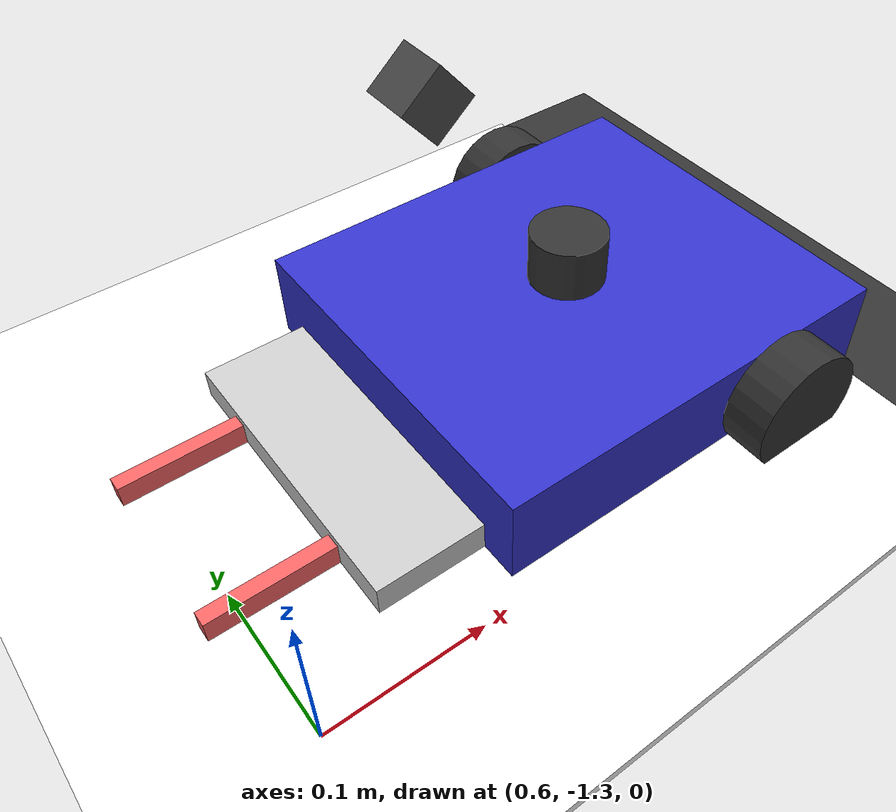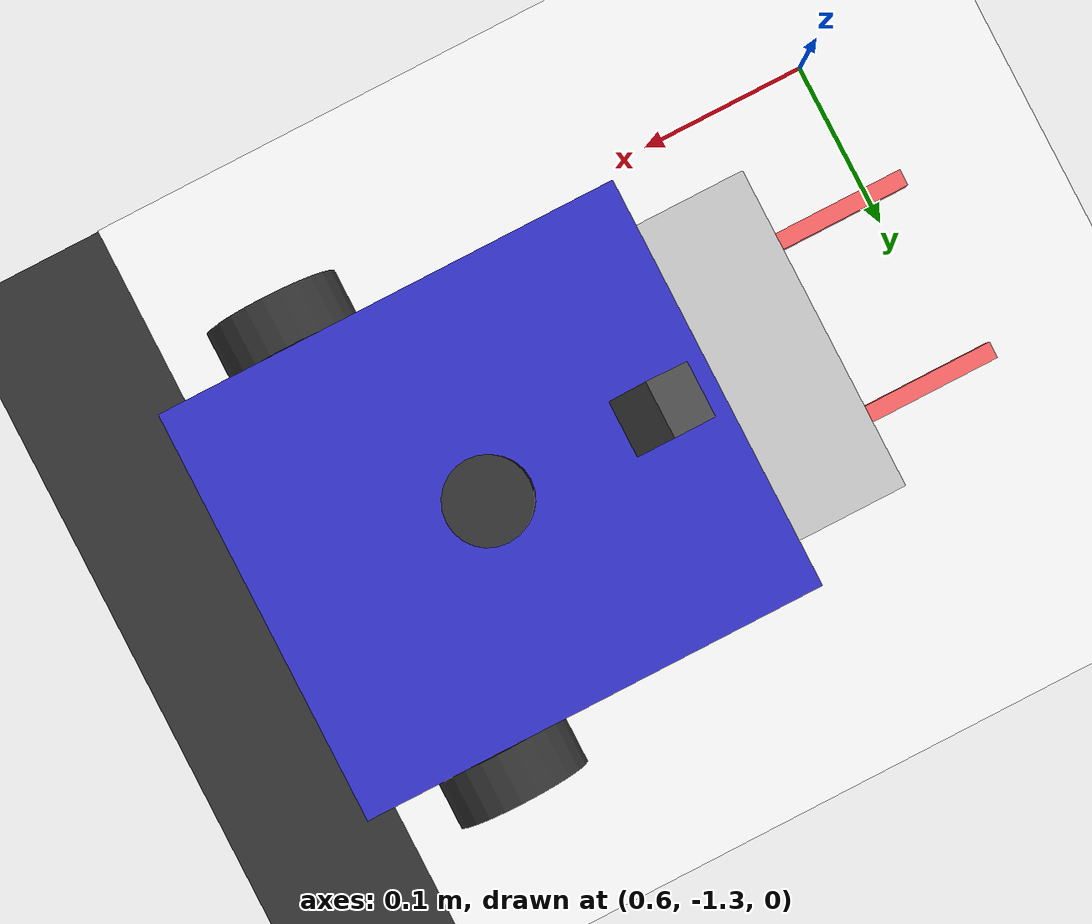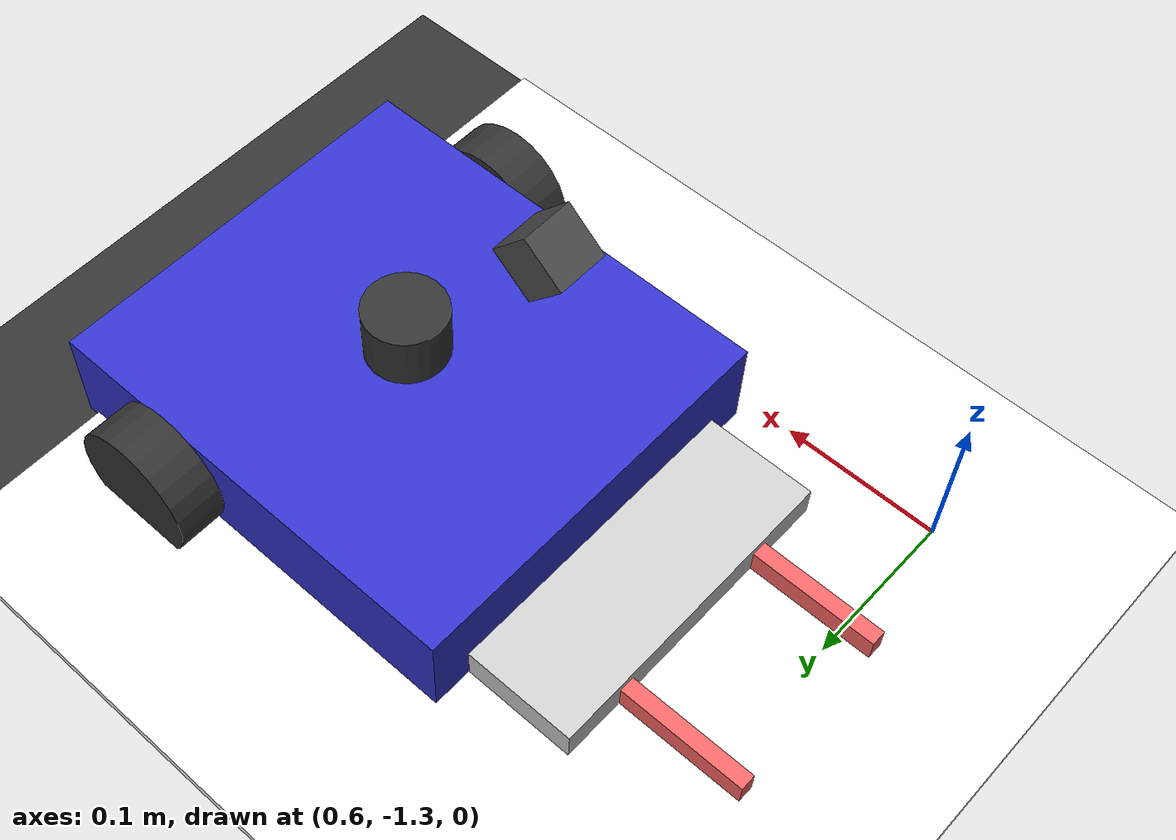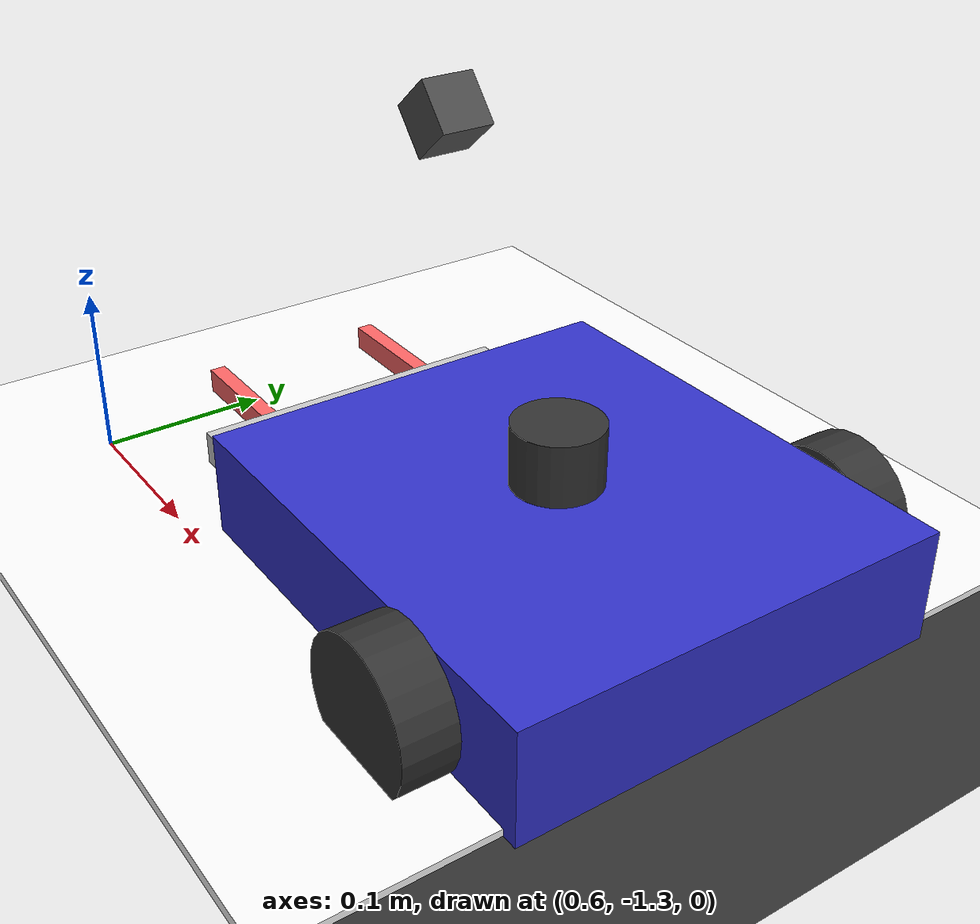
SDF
<sdf version="1.9">
 <world name="eurobot_2026_arena">
  <gravity>0 0 -9.81</gravity>
  <physics type="ode">
   <max_step_size>0.001</max_step_size>
   <real_time_factor>1</real_time_factor>
   <real_time_update_rate>1000</real_time_update_rate>
  </physics>
  <plugin name="ignition::gazebo::systems::Physics" filename="libignition-gazebo-physics-system.so"/>
  <plugin name="ignition::gazebo::systems::UserCommands" filename="libignition-gazebo-user-commands-system.so"/>
  <plugin name="ignition::gazebo::systems::SceneBroadcaster" filename="libignition-gazebo-scene-broadcaster-system.so"/>
  <plugin name="ignition::gazebo::systems::Sensors" filename="libignition-gazebo-sensors-system.so"/>
  <magnetic_field>6e-06 2.3e-05 -4.2e-05</magnetic_field>
  <atmosphere type="adiabatic"/>
  <scene><ambient>0.4 0.4 0.4 1</ambient><background>0.7 0.7 0.7 1</background><shadows>true</shadows></scene>
  <background><color>0.7 0.7 0.7 1</color></background>
  <model name="ground_plane">
   <static>true</static>
   <link name="link">
    <collision name="collision">
     <geometry><plane><normal>0 0 1</normal><size>1 1</size></plane></geometry>
    </collision>
    <visual name="visual">
     <geometry><plane><normal>0 0 1</normal><size>20 20</size></plane></geometry>
     <material>
      <ambient>0.8 0.8 0.8 1</ambient>
      <diffuse>0.2 0.2 0.2 1</diffuse>
      <specular>0.8 0.8 0.8 1</specular>
     </material>
    </visual>
    <inertial>
     <mass>1</mass>
     <inertia><ixx>1</ixx><ixy>0</ixy><ixz>0</ixz><iyy>1</iyy><iyz>0</iyz><izz>1</izz></inertia>
    </inertial>
   </link>
  </model>
  <include>
   <uri>file:///home/ibrahim/eurobot_ws/install/mam_eurobot_2026/share/mam_eurobot_2026/models/mat</uri>
   <name>floor_mat</name>
   <pose>0 -0.00433 0 0 -0 0</pose>
  </include>
  <include>
   <uri>file:///home/ibrahim/eurobot_ws/src/mam_eurobot_2026/models/simple_robot</uri>
   <name>simple_robot</name>
   <pose>0.868771 -1.16123 0.0035 -0 7e-06 3.1415</pose>
  </include>
  <light name="sun" type="directional">
   <cast_shadows>false</cast_shadows>
   <intensity>1</intensity>
   <direction>-0.5 0.5 -1</direction>
   <diffuse>1 1 1 1</diffuse>
   <specular>0.5 0.5 0.5 1</specular>
   <attenuation><range>10</range><linear>1</linear><constant>1</constant><quadratic>0</quadratic></attenuation>
   <spot><inner_angle>0</inner_angle><outer_angle>0</outer_angle><falloff>0</falloff></spot>
  </light>
 </world>
</sdf>

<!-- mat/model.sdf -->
<sdf version="1.9">
  <!-- Define a floor mat (3000mm x 2000mm x 70mm) -->
	<model name="floor_mat">
		<static>true</static>
		<link name="floor_link">
			<collision name="collision">
				<geometry>
					<box>
						<size>2 3 0.007</size>  <!-- 3000mm x 2000mm x 70mm -->
					</box>
				</geometry>
				<surface>
					<friction>
						<ode>
							<mu>0.9</mu>
							<mu2>0.9</mu2>
						</ode>
					</friction>
				</surface>
			</collision>
			<visual name="visual">
					<geometry>
							<box>
									<size>2 3 0.007</size> <!-- 3000mm x 2000mm x 70mm -->
							</box>
					</geometry>
					<material>
							<diffuse>1 1 1 1</diffuse>
							<pbr>
									<metal>
											<albedo_map>file://models/mat/mat_small.png</albedo_map>
											<metalness>0.0</metalness>
											<roughness>0.8</roughness>
									</metal>
							</pbr>
					</material>
			</visual>
		</link>
	</model>
</sdf>

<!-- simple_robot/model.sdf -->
<sdf version="1.9">
  <model name="simple_robot" canonical_link="base_link">
    <static>false</static>
    <pose>0 0 0 0 0 0</pose>

    <!-- ====================== BASE LINK ====================== -->
    <!-- Base dimensions: 280mm x 250mm x 70mm -->
    <!-- Base center is at wheel center height (25mm) -->
    <link name="base_link">
      <pose relative_to="__model__">0 0 0.025 0 0 0</pose>
      <inertial>
        <mass>3.0</mass>
        <inertia>
          <ixx>0.0186</ixx>
          <ixy>0</ixy>
          <ixz>0</ixz>
          <iyy>0.0228</iyy>
          <iyz>0</iyz>
          <izz>0.0391</izz>
        </inertia>
      </inertial>
      <visual name="base_visual">
        <geometry>
          <box><size>0.28 0.25 0.07</size></box>
        </geometry>
        <material>
          <ambient>0.2 0.2 0.8 1</ambient>
          <diffuse>0.2 0.2 0.8 1</diffuse>
          <specular>0.4 0.4 0.9 1</specular>
        </material>
      </visual>
      <collision name="base_collision">
        <geometry>
          <box><size>0.28 0.25 0.07</size></box>
        </geometry>
      </collision>
    </link>

    <!-- ====================== BASE FOOTPRINT ====================== -->
    <link name="base_footprint">
      <pose relative_to="base_link">0 0 -0.025 0 0 0</pose>
    </link>

    <joint name="base_to_footprint" type="fixed">
      <parent>base_link</parent>
      <child>base_footprint</child>
    </joint>

    <!-- ====================== LEFT WHEEL ====================== -->
    <!-- Wheel: 80mm diameter (40mm radius), 30mm width -->
    <!-- Position: 80mm from rear edge = -0.06m from base center -->
    <!-- Wheelbase: 220mm = 0.11m from center to each side -->
    <!-- Wheels OUTSIDE the base: 250mm/2 = 125mm + 15mm (half wheel width) = 140mm from center -->
    <link name="left_wheel">
      <pose relative_to="base_link">-0.06 0.14 0 -1.5707 0 0</pose>
      <inertial>
        <mass>0.3</mass>
        <inertia>
          <ixx>0.000240</ixx>
          <ixy>0</ixy>
          <ixz>0</ixz>
          <iyy>0.000240</iyy>
          <iyz>0</iyz>
          <izz>0.000480</izz>
        </inertia>
      </inertial>
      <visual name="wheel_visual">
        <geometry>
          <cylinder>
            <radius>0.04</radius>
            <length>0.03</length>
          </cylinder>
        </geometry>
        <material>
          <ambient>0.1 0.1 0.1 1</ambient>
          <diffuse>0.2 0.2 0.2 1</diffuse>
          <specular>0.3 0.3 0.3 1</specular>
        </material>
      </visual>
      <collision name="wheel_collision">
        <geometry>
          <cylinder>
            <radius>0.04</radius>
            <length>0.03</length>
          </cylinder>
        </geometry>
        <surface>
          <friction>
            <ode>
              <mu>1.0</mu>
              <mu2>1.0</mu2>
              <slip1>0.0</slip1>
              <slip2>0.0</slip2>
            </ode>
          </friction>
          <contact>
            <ode>
              <kp>1e6</kp>
              <kd>100</kd>
            </ode>
          </contact>
        </surface>
      </collision>
    </link>

    <!-- ====================== RIGHT WHEEL ====================== -->
    <link name="right_wheel">
      <pose relative_to="base_link">-0.06 -0.14 0 -1.5707 0 0</pose>
      <inertial>
        <mass>0.3</mass>
        <inertia>
          <ixx>0.000240</ixx>
          <ixy>0</ixy>
          <ixz>0</ixz>
          <iyy>0.000240</iyy>
          <iyz>0</iyz>
          <izz>0.000480</izz>
        </inertia>
      </inertial>
      <visual name="wheel_visual">
        <geometry>
          <cylinder>
            <radius>0.04</radius>
            <length>0.03</length>
          </cylinder>
        </geometry>
        <material>
          <ambient>0.1 0.1 0.1 1</ambient>
          <diffuse>0.2 0.2 0.2 1</diffuse>
          <specular>0.3 0.3 0.3 1</specular>
        </material>
      </visual>
      <collision name="wheel_collision">
        <geometry>
          <cylinder>
            <radius>0.04</radius>
            <length>0.03</length>
          </cylinder>
        </geometry>
        <surface>
          <friction>
            <ode>
              <mu>1.0</mu>
              <mu2>1.0</mu2>
              <slip1>0.0</slip1>
              <slip2>0.0</slip2>
            </ode>
          </friction>
          <contact>
            <ode>
              <kp>1e6</kp>
              <kd>100</kd>
            </ode>
          </contact>
        </surface>
      </collision>
    </link>

    <!-- ====================== CASTER WHEEL ====================== -->
    <link name="caster">
      <pose relative_to="base_link">0.11 0 -0.020 0 0 0</pose>
      <inertial>
        <mass>0.05</mass>
        <inertia>
          <ixx>0.00008</ixx>
          <ixy>0</ixy>
          <ixz>0</ixz>
          <iyy>0.00008</iyy>
          <iyz>0</iyz>
          <izz>0.00008</izz>
        </inertia>
      </inertial>
      <visual name="caster_visual">
        <geometry>
          <sphere><radius>0.020</radius></sphere>
        </geometry>
        <material>
          <ambient>0.3 0.3 0.3 1</ambient>
          <diffuse>0.5 0.5 0.5 1</diffuse>
          <specular>0.8 0.8 0.8 1</specular>
        </material>
      </visual>
      <collision name="caster_collision">
        <geometry>
          <sphere><radius>0.020</radius></sphere>
        </geometry>
        <surface>
          <friction>
            <ode>
              <mu>0.01</mu>
              <mu2>0.01</mu2>
              <slip1>1.0</slip1>
              <slip2>1.0</slip2>
            </ode>
          </friction>
          <contact>
            <ode>
              <kp>1e6</kp>
              <kd>100</kd>
            </ode>
          </contact>
        </surface>
      </collision>
    </link>

    <!-- ====================== GRIPPER BASE ====================== -->
    <!-- Mounted at front, height adjusted for crate pickup from longest side (150mm) -->
    <link name="gripper_base">
      <pose relative_to="base_link">0.17 0 -0.02 0 0 0</pose>
      <inertial>
        <mass>0.3</mass>
        <inertia>
          <ixx>0.0002</ixx>
          <iyy>0.0002</iyy>
          <izz>0.0002</izz>
          <ixy>0</ixy>
          <ixz>0</ixz>
          <iyz>0</iyz>
        </inertia>
      </inertial>
      <visual name="gripper_base_visual">
        <geometry>
          <box><size>0.08 0.20 0.03</size></box>
        </geometry>
        <material>
          <ambient>0.7 0.7 0.7 1</ambient>
          <diffuse>0.8 0.8 0.8 1</diffuse>
          <specular>0.9 0.9 0.9 1</specular>
        </material>
      </visual>
      <collision name="gripper_base_collision">
        <geometry>
          <box><size>0.08 0.20 0.03</size></box>
        </geometry>
      </collision>
    </link>

    <!-- ====================== LEFT GRIPPER FINGER ====================== -->
    <!-- Grips crate from 150mm (longest) side, positioned to grab 30mm height -->
    <link name="left_finger">
      <pose relative_to="gripper_base">0.04  0.055 0.0 0 0 0</pose>
      <inertial>
        <mass>0.08</mass>
        <inertia>
          <ixx>0.00008</ixx>
          <iyy>0.00002</iyy>
          <izz>0.00008</izz>
          <ixy>0</ixy>
          <ixz>0</ixz>
          <iyz>0</iyz>
        </inertia>
      </inertial>
      <visual name="left_finger_visual">
        <geometry>
          <box><size>0.16 0.01 0.02</size></box>
        </geometry>
        <material>
          <ambient>0.9 0.3 0.3 1</ambient>
          <diffuse>1.0 0.4 0.4 1</diffuse>
          <specular>1.0 0.6 0.6 1</specular>
        </material>
      </visual>
      <collision name="left_finger_collision">
        <geometry>
          <box><size>0.16 0.01 0.02</size></box>
        </geometry>
        <surface>
          <friction>
            <ode>
              <mu>8.0</mu>
              <mu2>8.0</mu2>
            </ode>
          </friction>
          <contact>
            <ode>
              <kp>1e6</kp>
              <kd>100</kd>
              <max_vel>0.01</max_vel>
              <min_depth>0.001</min_depth>
            </ode>
          </contact>
        </surface>
      </collision>
      <sensor name="left_finger_contact" type="contact">
    <always_on>true</always_on>
    <update_rate>200</update_rate>
    <contact>
      <collision>left_finger_collision</collision>
    </contact>
    <topic>/gripper/left/contact</topic>
  </sensor>
    </link>

    <!-- ====================== RIGHT GRIPPER FINGER ====================== -->
    <link name="right_finger">
      <pose relative_to="gripper_base">0.04  -0.055 0.0 0 0 0</pose>
      <inertial>
        <mass>0.08</mass>
        <inertia>
          <ixx>0.00008</ixx>
          <iyy>0.00002</iyy>
          <izz>0.00008</izz>
          <ixy>0</ixy>
          <ixz>0</ixz>
          <iyz>0</iyz>
        </inertia>
      </inertial>
      <visual name="right_finger_visual">
        <geometry>
          <box><size>0.16 0.01 0.02</size></box>
        </geometry>
        <material>
          <ambient>0.9 0.3 0.3 1</ambient>
          <diffuse>1.0 0.4 0.4 1</diffuse>
          <specular>1.0 0.6 0.6 1</specular>
        </material>
      </visual>
      <collision name="right_finger_collision">
        <geometry>
          <box><size>0.16 0.01 0.02</size></box>
        </geometry>
        <surface>
          <friction>
            <ode>
              <mu>8.0</mu>
              <mu2>8.0</mu2>
            </ode>
          </friction>
          <contact>
            <ode>
              <kp>1e6</kp>
              <kd>100</kd>
              <max_vel>0.01</max_vel>
              <min_depth>0.001</min_depth>
            </ode>
          </contact>
        </surface>
      </collision>
      <sensor name="right_finger_contact" type="contact">
  <always_on>true</always_on>
  <update_rate>200</update_rate>
  <contact>
    <collision>right_finger_collision</collision>
  </contact>
  <topic>/gripper/right/contact</topic>
</sensor>
    </link>

    <!-- ====================== LIDAR LINK ====================== -->
    <!-- Mounted on top of base for 360° visibility -->
    <link name="lidar_link">
      <pose relative_to="base_link">0 0 0.050 0 0 0</pose>
      <inertial>
        <mass>0.1</mass>
        <inertia>
          <ixx>0.00002</ixx>
          <iyy>0.00002</iyy>
          <izz>0.00002</izz>
          <ixy>0</ixy>
          <ixz>0</ixz>
          <iyz>0</iyz>
        </inertia>
      </inertial>
      <visual name="lidar_visual">
        <geometry>
          <cylinder>
            <radius>0.025</radius>
            <length>0.04</length>
          </cylinder>
        </geometry>
        <material>
          <ambient>0.1 0.1 0.1 1</ambient>
          <diffuse>0.2 0.2 0.2 1</diffuse>
          <specular>0.3 0.3 0.3 1</specular>
        </material>
      </visual>
      <sensor name="lidar_sensor" type="gpu_lidar">
        <topic>/scan</topic>
        <update_rate>10</update_rate>
        <always_on>true</always_on>
        <visualize>true</visualize>
        <lidar>
          <scan>
            <horizontal>
              <samples>360</samples>
              <resolution>1</resolution>
              <min_angle>-3.14159</min_angle>
              <max_angle>3.14159</max_angle>
            </horizontal>
            <vertical>
              <samples>1</samples>
              <resolution>1</resolution>
              <min_angle>0</min_angle>
              <max_angle>0</max_angle>
            </vertical>
          </scan>
          <range>
            <min>0.08</min>
            <max>10.0</max>
            <resolution>0.01</resolution>
          </range>
          <noise>
            <type>gaussian</type>
            <mean>0.0</mean>
            <stddev>0.01</stddev>
          </noise>
        </lidar>
        <frame_id>lidar_link</frame_id>
      </sensor>
    </link>

    <!-- ====================== CAMERA LINK ====================== -->
    <link name="camera_link">
      <pose relative_to="base_link">0.10 0 0.20 0 0.7 0</pose>
      <inertial>
        <mass>0.05</mass>
        <inertia>
          <ixx>0.00001</ixx>
          <iyy>0.00001</iyy>
          <izz>0.00001</izz>
          <ixy>0</ixy>
          <ixz>0</ixz>
          <iyz>0</iyz>
        </inertia>
      </inertial>
      <visual name="camera_visual">
        <geometry>
          <box><size>0.03 0.03 0.03</size></box>
        </geometry>
        <material>
          <ambient>0.2 0.2 0.2 1</ambient>
          <diffuse>0.3 0.3 0.3 1</diffuse>
          <specular>0.5 0.5 0.5 1</specular>
        </material>
      </visual>
      <sensor name="camera_sensor" type="camera">
        <always_on>true</always_on>
        <update_rate>30</update_rate>
        <visualize>true</visualize>
        <camera>
          <horizontal_fov>1.047</horizontal_fov>
          <image>
            <width>320</width>
            <height>240</height>
            <format>R8G8B8</format>
          </image>
          <clip>
            <near>0.1</near>
            <far>100</far>
          </clip>
          <noise>
            <type>gaussian</type>
            <mean>0.0</mean>
            <stddev>0.007</stddev>
          </noise>
        </camera>
        <topic>/camera</topic>
      </sensor>
    </link>

    <!-- ====================== JOINTS ====================== -->

    <!-- Wheel Joints -->
    <joint name="left_wheel_joint" type="revolute">
      <parent>base_link</parent>
      <child>left_wheel</child>
      <axis>
        <xyz>0 0 1</xyz>
        <limit>
          <lower>-1e16</lower>
          <upper>1e16</upper>
        </limit>
      </axis>
    </joint>

    <joint name="right_wheel_joint" type="revolute">
      <parent>base_link</parent>
      <child>right_wheel</child>
      <axis>
        <xyz>0 0 1</xyz>
        <limit>
          <lower>-1e16</lower>
          <upper>1e16</upper>
        </limit>
      </axis>
    </joint>

    <!-- Caster Joint -->
    <joint name="caster_joint" type="fixed">
      <parent>base_link</parent>
      <child>caster</child>
    </joint>

    <!-- Gripper Joints -->
    <joint name="gripper_base_joint" type="fixed">
      <parent>base_link</parent>
      <child>gripper_base</child>
    </joint>

    <joint name="left_finger_joint" type="prismatic">
  <parent>gripper_base</parent>
  <child>left_finger</child>

  <axis>
    <xyz>0 1 0</xyz>

    <limit>
      <!-- Allows finger to move inward and outward -->
      <lower>-0.03</lower>
      <upper>0.03</upper>
      <effort>40</effort>
      <velocity>0.05</velocity>
    </limit>

    <dynamics>
      <damping>3.0</damping>
      <friction>0.5</friction>
    </dynamics>
  </axis>
  </joint>

    <joint name="right_finger_joint" type="prismatic">
  <parent>gripper_base</parent>
  <child>right_finger</child>

  <axis>
    <xyz>0 -1 0</xyz>

    <limit>

      <lower>-0.03</lower>
      <upper>0.03</upper>
      <effort>40</effort>
      <velocity>0.05</velocity>
    </limit>

    <dynamics>
      <damping>3.0</damping>
      <friction>0.5</friction>
    </dynamics>
  </axis>
  </joint>

    <!-- Sensor Joints -->
    <joint name="lidar_joint" type="fixed">
      <parent>base_link</parent>
      <child>lidar_link</child>
    </joint>

    <joint name="camera_joint" type="fixed">
      <parent>base_link</parent>
      <child>camera_link</child>
    </joint>

    <!-- ====================== DIFFERENTIAL DRIVE PLUGIN ====================== -->
    <plugin
      filename="libignition-gazebo-diff-drive-system.so"
      name="ignition::gazebo::systems::DiffDrive">
      <left_joint>left_wheel_joint</left_joint>
      <right_joint>right_wheel_joint</right_joint>
      <wheel_separation>0.28</wheel_separation>
      <wheel_radius>0.04</wheel_radius>
      <odom_publish_frequency>50</odom_publish_frequency>
      <topic>cmd_vel</topic>
      <odom_topic>odom</odom_topic>
      <tf_topic>/tf</tf_topic>
      <frame_id>odom</frame_id>
      <child_frame_id>base_link</child_frame_id>
      <max_linear_acceleration>2.0</max_linear_acceleration>
      <max_angular_acceleration>3.0</max_angular_acceleration>
      <max_linear_velocity>1.0</max_linear_velocity>
      <max_angular_velocity>2.0</max_angular_velocity>
    </plugin>

    <!-- ====================== JOINT STATE PUBLISHER ====================== -->
    <plugin
      filename="libignition-gazebo-joint-state-publisher-system.so"
      name="ignition::gazebo::systems::JointStatePublisher">
      <joint_name>left_wheel_joint</joint_name>
      <joint_name>right_wheel_joint</joint_name>
      <joint_name>left_finger_joint</joint_name>
      <joint_name>right_finger_joint</joint_name>
      <topic>/joint_states</topic>
      <update_rate>50</update_rate>
    </plugin>

    <!-- ====================== SENSORS SYSTEM ====================== -->
    <plugin
      filename="libignition-gazebo-sensors-system.so"
      name="ignition::gazebo::systems::Sensors">
      <render_engine>ogre2</render_engine>
    </plugin>

    <!-- ====================== POSE PUBLISHER ====================== -->
    <plugin
      filename="libignition-gazebo-pose-publisher-system.so"
      name="ignition::gazebo::systems::PosePublisher">
      <publish_link_pose>true</publish_link_pose>
      <publish_collision_pose>false</publish_collision_pose>
      <publish_visual_pose>false</publish_visual_pose>
      <publish_nested_model_pose>true</publish_nested_model_pose>
      <use_pose_vector_msg>true</use_pose_vector_msg>
      <static_publisher>true</static_publisher>
      <static_update_frequency>10</static_update_frequency>
    </plugin>
    <!-- ====================== Contact Sensor ====================== -->
    <plugin filename="libignition-gazebo-contact-system.so"
        name="ignition::gazebo::systems::Contact">
    </plugin>
    <!-- ====================== ROS2_CONTROL DEFINITION ====================== -->
    <ros2_control name="GripperSystem" type="system">
    <hardware>
    <plugin>ign_ros2_control/IgnitionSystem</plugin>
    </hardware>

    <joint name="left_finger_joint">
    <command_interface name="position">
      <param name="min">-0.03</param>
      <param name="max">0.03</param>
    </command_interface>
    <state_interface name="position"/>
    <state_interface name="velocity"/>
    <state_interface name="effort"/>
    </joint>

    <joint name="right_finger_joint">
    <command_interface name="position">
      <param name="min">-0.03</param>
      <param name="max">0.03</param>
    </command_interface>
    <state_interface name="position"/>
    <state_interface name="velocity"/>
    <state_interface name="effort"/>
  </joint>
  </ros2_control>

<!-- ====================== IGN_ROS2_CONTROL PLUGIN ====================== -->
<plugin
  filename="libign_ros2_control-system.so"
  name="ign_ros2_control::IgnitionROS2ControlPlugin">
  <parameters>/root/eurobot_ws/src/mam_eurobot_2026/models/simple_robot/gripper_controller.yaml</parameters>
</plugin>

  </model>
</sdf>
